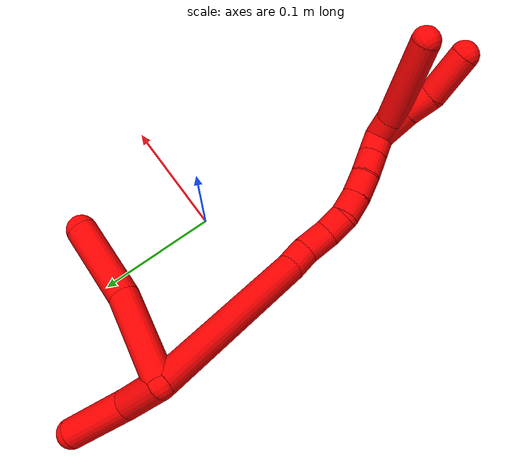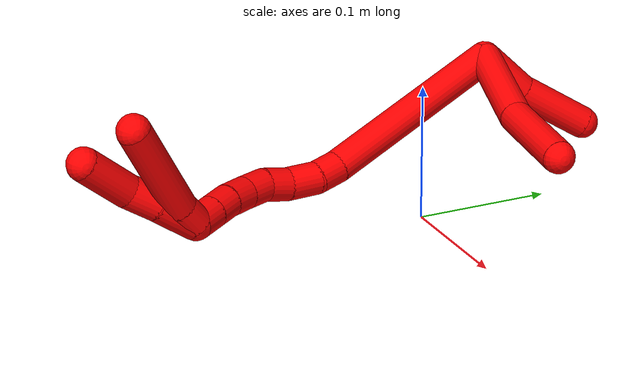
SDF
<sdf version="1.7">
 <world name="default">
  <model name="2">
   <static>0</static>
   <link name="2">
    <collision name="collision-cylinder-e_1_2_8">
     <pose>0.013719 -0.004224 0.038084 0.110471 0.343815 0.019199</pose>
     <geometry><cylinder><radius>0.0125</radius><length>0.0814</length></cylinder></geometry>
     <surface>
      <friction><ode><mu>1.16</mu><mu2>1.16</mu2><slip1>0</slip1><slip2>0</slip2></ode></friction>
      <contact><ode><kp>1e+06</kp><kd>1</kd><max_vel>0</max_vel><min_depth>0.001</min_depth></ode></contact>
     </surface>
    </collision>
    <visual name="visual-cylinder-e_1_2_8">
     <pose>0.013719 -0.004224 0.038084 0.110471 0.343815 0.019199</pose>
     <geometry><cylinder><radius>0.0125</radius><length>0.0814</length></cylinder></geometry>
     <material><ambient>1 0 0 1</ambient></material>
    </visual>
    <collision name="collision-cylinder-e_2_8_6">
     <pose>0.034398 -0.006861 0.109718 -0.047291 0.204324 -0.004849</pose>
     <geometry><cylinder><radius>0.0125</radius><length>0.0686</length></cylinder></geometry>
     <surface>
      <friction><ode><mu>1.16</mu><mu2>1.16</mu2><slip1>0</slip1><slip2>0</slip2></ode></friction>
      <contact><ode><kp>1e+06</kp><kd>1</kd><max_vel>0</max_vel><min_depth>0.001</min_depth></ode></contact>
     </surface>
    </collision>
    <visual name="visual-cylinder-e_2_8_6">
     <pose>0.034398 -0.006861 0.109718 -0.047291 0.204324 -0.004849</pose>
     <geometry><cylinder><radius>0.0125</radius><length>0.0686</length></cylinder></geometry>
     <material><ambient>1 0 0 1</ambient></material>
    </visual>
    <collision name="collision-cylinder-e_1_2_9">
     <pose>0.014941 0.0144 0.00139 -1.47458 0.801525 -0.734616</pose>
     <geometry><cylinder><radius>0.0125</radius><length>0.041594</length></cylinder></geometry>
     <surface>
      <friction><ode><mu>1.16</mu><mu2>1.16</mu2><slip1>0</slip1><slip2>0</slip2></ode></friction>
      <contact><ode><kp>1e+06</kp><kd>1</kd><max_vel>0</max_vel><min_depth>0.001</min_depth></ode></contact>
     </surface>
    </collision>
    <visual name="visual-cylinder-e_1_2_9">
     <pose>0.014941 0.0144 0.00139 -1.47458 0.801525 -0.734616</pose>
     <geometry><cylinder><radius>0.0125</radius><length>0.041594</length></cylinder></geometry>
     <material><ambient>1 0 0 1</ambient></material>
    </visual>
    <collision name="collision-cylinder-e_2_9_5">
     <pose>0.045762 0.053174 0.005337 -1.46626 0.574932 -0.520444</pose>
     <geometry><cylinder><radius>0.0125</radius><length>0.058406</length></cylinder></geometry>
     <surface>
      <friction><ode><mu>1.16</mu><mu2>1.16</mu2><slip1>0</slip1><slip2>0</slip2></ode></friction>
      <contact><ode><kp>1e+06</kp><kd>1</kd><max_vel>0</max_vel><min_depth>0.001</min_depth></ode></contact>
     </surface>
    </collision>
    <visual name="visual-cylinder-e_2_9_5">
     <pose>0.045762 0.053174 0.005337 -1.46626 0.574932 -0.520444</pose>
     <geometry><cylinder><radius>0.0125</radius><length>0.058406</length></cylinder></geometry>
     <material><ambient>1 0 0 1</ambient></material>
    </visual>
    <collision name="collision-cylinder-e_1_2_10">
     <pose>0.028753 -0.068805 0.017911 1.31614 0.384304 0.298546</pose>
     <geometry><cylinder><radius>0.0125</radius><length>0.153383</length></cylinder></geometry>
     <surface>
      <friction><ode><mu>1.16</mu><mu2>1.16</mu2><slip1>0</slip1><slip2>0</slip2></ode></friction>
      <contact><ode><kp>1e+06</kp><kd>1</kd><max_vel>0</max_vel><min_depth>0.001</min_depth></ode></contact>
     </surface>
    </collision>
    <visual name="visual-cylinder-e_1_2_10">
     <pose>0.028753 -0.068805 0.017911 1.31614 0.384304 0.298546</pose>
     <geometry><cylinder><radius>0.0125</radius><length>0.153383</length></cylinder></geometry>
     <material><ambient>1 0 0 1</ambient></material>
    </visual>
    <collision name="collision-cylinder-e_2_10_11">
     <pose>0.059514 -0.147092 0.039046 1.24304 0.197865 0.141937</pose>
     <geometry><cylinder><radius>0.0125</radius><length>0.02043</length></cylinder></geometry>
     <surface>
      <friction><ode><mu>1.16</mu><mu2>1.16</mu2><slip1>0</slip1><slip2>0</slip2></ode></friction>
      <contact><ode><kp>1e+06</kp><kd>1</kd><max_vel>0</max_vel><min_depth>0.001</min_depth></ode></contact>
     </surface>
    </collision>
    <visual name="visual-cylinder-e_2_10_11">
     <pose>0.059514 -0.147092 0.039046 1.24304 0.197865 0.141937</pose>
     <geometry><cylinder><radius>0.0125</radius><length>0.02043</length></cylinder></geometry>
     <material><ambient>1 0 0 1</ambient></material>
    </visual>
    <collision name="collision-cylinder-e_3_11_12">
     <pose>0.061589 -0.168805 0.044183 1.41563 0.005468 0.004679</pose>
     <geometry><cylinder><radius>0.0125</radius><length>0.024758</length></cylinder></geometry>
     <surface>
      <friction><ode><mu>1.16</mu><mu2>1.16</mu2><slip1>0</slip1><slip2>0</slip2></ode></friction>
      <contact><ode><kp>1e+06</kp><kd>1</kd><max_vel>0</max_vel><min_depth>0.001</min_depth></ode></contact>
     </surface>
    </collision>
    <visual name="visual-cylinder-e_3_11_12">
     <pose>0.061589 -0.168805 0.044183 1.41563 0.005468 0.004679</pose>
     <geometry><cylinder><radius>0.0125</radius><length>0.024758</length></cylinder></geometry>
     <material><ambient>1 0 0 1</ambient></material>
    </visual>
    <collision name="collision-cylinder-e_4_12_13">
     <pose>0.05972 -0.190576 0.048423 1.33165 -0.1948 -0.153197</pose>
     <geometry><cylinder><radius>0.0125</radius><length>0.020019</length></cylinder></geometry>
     <surface>
      <friction><ode><mu>1.16</mu><mu2>1.16</mu2><slip1>0</slip1><slip2>0</slip2></ode></friction>
      <contact><ode><kp>1e+06</kp><kd>1</kd><max_vel>0</max_vel><min_depth>0.001</min_depth></ode></contact>
     </surface>
    </collision>
    <visual name="visual-cylinder-e_4_12_13">
     <pose>0.05972 -0.190576 0.048423 1.33165 -0.1948 -0.153197</pose>
     <geometry><cylinder><radius>0.0125</radius><length>0.020019</length></cylinder></geometry>
     <material><ambient>1 0 0 1</ambient></material>
    </visual>
    <collision name="collision-cylinder-e_5_13_14">
     <pose>0.058091 -0.209134 0.05565 1.07296 0.030131 0.017919</pose>
     <geometry><cylinder><radius>0.0125</radius><length>0.020535</length></cylinder></geometry>
     <surface>
      <friction><ode><mu>1.16</mu><mu2>1.16</mu2><slip1>0</slip1><slip2>0</slip2></ode></friction>
      <contact><ode><kp>1e+06</kp><kd>1</kd><max_vel>0</max_vel><min_depth>0.001</min_depth></ode></contact>
     </surface>
    </collision>
    <visual name="visual-cylinder-e_5_13_14">
     <pose>0.058091 -0.209134 0.05565 1.07296 0.030131 0.017919</pose>
     <geometry><cylinder><radius>0.0125</radius><length>0.020535</length></cylinder></geometry>
     <material><ambient>1 0 0 1</ambient></material>
    </visual>
    <collision name="collision-cylinder-e_6_14_15">
     <pose>0.058377 -0.226588 0.066642 0.945466 -0.002281 -0.001167</pose>
     <geometry><cylinder><radius>0.0125</radius><length>0.020812</length></cylinder></geometry>
     <surface>
      <friction><ode><mu>1.16</mu><mu2>1.16</mu2><slip1>0</slip1><slip2>0</slip2></ode></friction>
      <contact><ode><kp>1e+06</kp><kd>1</kd><max_vel>0</max_vel><min_depth>0.001</min_depth></ode></contact>
     </surface>
    </collision>
    <visual name="visual-cylinder-e_6_14_15">
     <pose>0.058377 -0.226588 0.066642 0.945466 -0.002281 -0.001167</pose>
     <geometry><cylinder><radius>0.0125</radius><length>0.020812</length></cylinder></geometry>
     <material><ambient>1 0 0 1</ambient></material>
    </visual>
    <collision name="collision-cylinder-e_7_15_16">
     <pose>0.059498 -0.24276 0.078995 0.890331 0.114493 0.054671</pose>
     <geometry><cylinder><radius>0.0125</radius><length>0.020036</length></cylinder></geometry>
     <surface>
      <friction><ode><mu>1.16</mu><mu2>1.16</mu2><slip1>0</slip1><slip2>0</slip2></ode></friction>
      <contact><ode><kp>1e+06</kp><kd>1</kd><max_vel>0</max_vel><min_depth>0.001</min_depth></ode></contact>
     </surface>
    </collision>
    <visual name="visual-cylinder-e_7_15_16">
     <pose>0.059498 -0.24276 0.078995 0.890331 0.114493 0.054671</pose>
     <geometry><cylinder><radius>0.0125</radius><length>0.020036</length></cylinder></geometry>
     <material><ambient>1 0 0 1</ambient></material>
    </visual>
    <collision name="collision-cylinder-e_8_16_1">
     <pose>0.061755 -0.258248 0.091496 0.893098 0.111325 0.053346</pose>
     <geometry><cylinder><radius>0.0125</radius><length>0.020026</length></cylinder></geometry>
     <surface>
      <friction><ode><mu>1.16</mu><mu2>1.16</mu2><slip1>0</slip1><slip2>0</slip2></ode></friction>
      <contact><ode><kp>1e+06</kp><kd>1</kd><max_vel>0</max_vel><min_depth>0.001</min_depth></ode></contact>
     </surface>
    </collision>
    <visual name="visual-cylinder-e_8_16_1">
     <pose>0.061755 -0.258248 0.091496 0.893098 0.111325 0.053346</pose>
     <geometry><cylinder><radius>0.0125</radius><length>0.020026</length></cylinder></geometry>
     <material><ambient>1 0 0 1</ambient></material>
    </visual>
    <collision name="collision-cylinder-e_1_1_17">
     <pose>0.053266 -0.279595 0.099099 1.47081 -0.612531 -0.557273</pose>
     <geometry><cylinder><radius>0.0125</radius><length>0.033398</length></cylinder></geometry>
     <surface>
      <friction><ode><mu>1.16</mu><mu2>1.16</mu2><slip1>0</slip1><slip2>0</slip2></ode></friction>
      <contact><ode><kp>1e+06</kp><kd>1</kd><max_vel>0</max_vel><min_depth>0.001</min_depth></ode></contact>
     </surface>
    </collision>
    <visual name="visual-cylinder-e_1_1_17">
     <pose>0.053266 -0.279595 0.099099 1.47081 -0.612531 -0.557273</pose>
     <geometry><cylinder><radius>0.0125</radius><length>0.033398</length></cylinder></geometry>
     <material><ambient>1 0 0 1</ambient></material>
    </visual>
    <collision name="collision-cylinder-e_2_17_18">
     <pose>0.037196 -0.303515 0.100128 1.6032 -0.559466 -0.576902</pose>
     <geometry><cylinder><radius>0.0125</radius><length>0.024378</length></cylinder></geometry>
     <surface>
      <friction><ode><mu>1.16</mu><mu2>1.16</mu2><slip1>0</slip1><slip2>0</slip2></ode></friction>
      <contact><ode><kp>1e+06</kp><kd>1</kd><max_vel>0</max_vel><min_depth>0.001</min_depth></ode></contact>
     </surface>
    </collision>
    <visual name="visual-cylinder-e_2_17_18">
     <pose>0.037196 -0.303515 0.100128 1.6032 -0.559466 -0.576902</pose>
     <geometry><cylinder><radius>0.0125</radius><length>0.024378</length></cylinder></geometry>
     <material><ambient>1 0 0 1</ambient></material>
    </visual>
    <collision name="collision-cylinder-e_3_18_4">
     <pose>0.017352 -0.329461 0.104573 1.27387 -0.686079 -0.516643</pose>
     <geometry><cylinder><radius>0.0125</radius><length>0.042224</length></cylinder></geometry>
     <surface>
      <friction><ode><mu>1.16</mu><mu2>1.16</mu2><slip1>0</slip1><slip2>0</slip2></ode></friction>
      <contact><ode><kp>1e+06</kp><kd>1</kd><max_vel>0</max_vel><min_depth>0.001</min_depth></ode></contact>
     </surface>
    </collision>
    <visual name="visual-cylinder-e_3_18_4">
     <pose>0.017352 -0.329461 0.104573 1.27387 -0.686079 -0.516643</pose>
     <geometry><cylinder><radius>0.0125</radius><length>0.042224</length></cylinder></geometry>
     <material><ambient>1 0 0 1</ambient></material>
    </visual>
    <collision name="collision-cylinder-e_1_1_19">
     <pose>0.055208 -0.271947 0.100247 1.17118 -0.870437 -0.598199</pose>
     <geometry><cylinder><radius>0.0125</radius><length>0.020034</length></cylinder></geometry>
     <surface>
      <friction><ode><mu>1.16</mu><mu2>1.16</mu2><slip1>0</slip1><slip2>0</slip2></ode></friction>
      <contact><ode><kp>1e+06</kp><kd>1</kd><max_vel>0</max_vel><min_depth>0.001</min_depth></ode></contact>
     </surface>
    </collision>
    <visual name="visual-cylinder-e_1_1_19">
     <pose>0.055208 -0.271947 0.100247 1.17118 -0.870437 -0.598199</pose>
     <geometry><cylinder><radius>0.0125</radius><length>0.020034</length></cylinder></geometry>
     <material><ambient>1 0 0 1</ambient></material>
    </visual>
    <collision name="collision-cylinder-e_2_19_3">
     <pose>0.013921 -0.29534 0.115544 0.938351 -0.999226 -0.539859</pose>
     <geometry><cylinder><radius>0.0125</radius><length>0.079966</length></cylinder></geometry>
     <surface>
      <friction><ode><mu>1.16</mu><mu2>1.16</mu2><slip1>0</slip1><slip2>0</slip2></ode></friction>
      <contact><ode><kp>1e+06</kp><kd>1</kd><max_vel>0</max_vel><min_depth>0.001</min_depth></ode></contact>
     </surface>
    </collision>
    <visual name="visual-cylinder-e_2_19_3">
     <pose>0.013921 -0.29534 0.115544 0.938351 -0.999226 -0.539859</pose>
     <geometry><cylinder><radius>0.0125</radius><length>0.079966</length></cylinder></geometry>
     <material><ambient>1 0 0 1</ambient></material>
    </visual>
    <collision name="collision-sphere-3">
     <pose>-0.019707 -0.312786 0.128329 0 -0 0</pose>
     <geometry><sphere><radius>0.0125</radius></sphere></geometry>
     <surface>
      <friction><ode><mu>1.16</mu><mu2>1.16</mu2><slip1>0</slip1><slip2>0</slip2></ode></friction>
      <contact><ode><kp>1e+06</kp><kd>1</kd><max_vel>0</max_vel><min_depth>0.001</min_depth></ode></contact>
     </surface>
    </collision>
    <visual name="visual-sphere-3">
     <pose>-0.019707 -0.312786 0.128329 0 -0 0</pose>
     <geometry><sphere><radius>0.0125</radius></sphere></geometry>
     <material><ambient>1 0 0 1</ambient></material>
    </visual>
    <collision name="collision-sphere-19">
     <pose>0.047549 -0.277895 0.102759 0 -0 0</pose>
     <geometry><sphere><radius>0.0125</radius></sphere></geometry>
     <surface>
      <friction><ode><mu>1.16</mu><mu2>1.16</mu2><slip1>0</slip1><slip2>0</slip2></ode></friction>
      <contact><ode><kp>1e+06</kp><kd>1</kd><max_vel>0</max_vel><min_depth>0.001</min_depth></ode></contact>
     </surface>
    </collision>
    <visual name="visual-sphere-19">
     <pose>0.047549 -0.277895 0.102759 0 -0 0</pose>
     <geometry><sphere><radius>0.0125</radius></sphere></geometry>
     <material><ambient>1 0 0 1</ambient></material>
    </visual>
    <collision name="collision-sphere-10">
     <pose>0.057506 -0.13761 0.035822 0 -0 0</pose>
     <geometry><sphere><radius>0.0125</radius></sphere></geometry>
     <surface>
      <friction><ode><mu>1.16</mu><mu2>1.16</mu2><slip1>0</slip1><slip2>0</slip2></ode></friction>
      <contact><ode><kp>1e+06</kp><kd>1</kd><max_vel>0</max_vel><min_depth>0.001</min_depth></ode></contact>
     </surface>
    </collision>
    <visual name="visual-sphere-10">
     <pose>0.057506 -0.13761 0.035822 0 -0 0</pose>
     <geometry><sphere><radius>0.0125</radius></sphere></geometry>
     <material><ambient>1 0 0 1</ambient></material>
    </visual>
    <collision name="collision-sphere-5">
     <pose>0.061642 0.077548 0.007894 0 -0 0</pose>
     <geometry><sphere><radius>0.0125</radius></sphere></geometry>
     <surface>
      <friction><ode><mu>1.16</mu><mu2>1.16</mu2><slip1>0</slip1><slip2>0</slip2></ode></friction>
      <contact><ode><kp>1e+06</kp><kd>1</kd><max_vel>0</max_vel><min_depth>0.001</min_depth></ode></contact>
     </surface>
    </collision>
    <visual name="visual-sphere-5">
     <pose>0.061642 0.077548 0.007894 0 -0 0</pose>
     <geometry><sphere><radius>0.0125</radius></sphere></geometry>
     <material><ambient>1 0 0 1</ambient></material>
    </visual>
    <collision name="collision-sphere-6">
     <pose>0.041358 -0.005273 0.143267 0 -0 0</pose>
     <geometry><sphere><radius>0.0125</radius></sphere></geometry>
     <surface>
      <friction><ode><mu>1.16</mu><mu2>1.16</mu2><slip1>0</slip1><slip2>0</slip2></ode></friction>
      <contact><ode><kp>1e+06</kp><kd>1</kd><max_vel>0</max_vel><min_depth>0.001</min_depth></ode></contact>
     </surface>
    </collision>
    <visual name="visual-sphere-6">
     <pose>0.041358 -0.005273 0.143267 0 -0 0</pose>
     <geometry><sphere><radius>0.0125</radius></sphere></geometry>
     <material><ambient>1 0 0 1</ambient></material>
    </visual>
    <collision name="collision-sphere-9">
     <pose>0.029882 0.028799 0.00278 0 -0 0</pose>
     <geometry><sphere><radius>0.0125</radius></sphere></geometry>
     <surface>
      <friction><ode><mu>1.16</mu><mu2>1.16</mu2><slip1>0</slip1><slip2>0</slip2></ode></friction>
      <contact><ode><kp>1e+06</kp><kd>1</kd><max_vel>0</max_vel><min_depth>0.001</min_depth></ode></contact>
     </surface>
    </collision>
    <visual name="visual-sphere-9">
     <pose>0.029882 0.028799 0.00278 0 -0 0</pose>
     <geometry><sphere><radius>0.0125</radius></sphere></geometry>
     <material><ambient>1 0 0 1</ambient></material>
    </visual>
    <collision name="collision-sphere-2">
     <geometry><sphere><radius>0.0125</radius></sphere></geometry>
     <surface>
      <friction><ode><mu>1.16</mu><mu2>1.16</mu2><slip1>0</slip1><slip2>0</slip2></ode></friction>
      <contact><ode><kp>1e+06</kp><kd>1</kd><max_vel>0</max_vel><min_depth>0.001</min_depth></ode></contact>
     </surface>
    </collision>
    <visual name="visual-sphere-2">
     <geometry><sphere><radius>0.0125</radius></sphere></geometry>
     <material><ambient>1 0 0 1</ambient></material>
    </visual>
    <collision name="collision-sphere-8">
     <pose>0.027438 -0.008449 0.076169 0 -0 0</pose>
     <geometry><sphere><radius>0.0125</radius></sphere></geometry>
     <surface>
      <friction><ode><mu>1.16</mu><mu2>1.16</mu2><slip1>0</slip1><slip2>0</slip2></ode></friction>
      <contact><ode><kp>1e+06</kp><kd>1</kd><max_vel>0</max_vel><min_depth>0.001</min_depth></ode></contact>
     </surface>
    </collision>
    <visual name="visual-sphere-8">
     <pose>0.027438 -0.008449 0.076169 0 -0 0</pose>
     <geometry><sphere><radius>0.0125</radius></sphere></geometry>
     <material><ambient>1 0 0 1</ambient></material>
    </visual>
    <collision name="collision-sphere-11">
     <pose>0.061522 -0.156575 0.04227 0 -0 0</pose>
     <geometry><sphere><radius>0.0125</radius></sphere></geometry>
     <surface>
      <friction><ode><mu>1.16</mu><mu2>1.16</mu2><slip1>0</slip1><slip2>0</slip2></ode></friction>
      <contact><ode><kp>1e+06</kp><kd>1</kd><max_vel>0</max_vel><min_depth>0.001</min_depth></ode></contact>
     </surface>
    </collision>
    <visual name="visual-sphere-11">
     <pose>0.061522 -0.156575 0.04227 0 -0 0</pose>
     <geometry><sphere><radius>0.0125</radius></sphere></geometry>
     <material><ambient>1 0 0 1</ambient></material>
    </visual>
    <collision name="collision-sphere-12">
     <pose>0.061657 -0.181035 0.046096 0 -0 0</pose>
     <geometry><sphere><radius>0.0125</radius></sphere></geometry>
     <surface>
      <friction><ode><mu>1.16</mu><mu2>1.16</mu2><slip1>0</slip1><slip2>0</slip2></ode></friction>
      <contact><ode><kp>1e+06</kp><kd>1</kd><max_vel>0</max_vel><min_depth>0.001</min_depth></ode></contact>
     </surface>
    </collision>
    <visual name="visual-sphere-12">
     <pose>0.061657 -0.181035 0.046096 0 -0 0</pose>
     <geometry><sphere><radius>0.0125</radius></sphere></geometry>
     <material><ambient>1 0 0 1</ambient></material>
    </visual>
    <collision name="collision-sphere-13">
     <pose>0.057782 -0.200116 0.050749 0 -0 0</pose>
     <geometry><sphere><radius>0.0125</radius></sphere></geometry>
     <surface>
      <friction><ode><mu>1.16</mu><mu2>1.16</mu2><slip1>0</slip1><slip2>0</slip2></ode></friction>
      <contact><ode><kp>1e+06</kp><kd>1</kd><max_vel>0</max_vel><min_depth>0.001</min_depth></ode></contact>
     </surface>
    </collision>
    <visual name="visual-sphere-13">
     <pose>0.057782 -0.200116 0.050749 0 -0 0</pose>
     <geometry><sphere><radius>0.0125</radius></sphere></geometry>
     <material><ambient>1 0 0 1</ambient></material>
    </visual>
    <collision name="collision-sphere-14">
     <pose>0.058401 -0.218151 0.060551 0 -0 0</pose>
     <geometry><sphere><radius>0.0125</radius></sphere></geometry>
     <surface>
      <friction><ode><mu>1.16</mu><mu2>1.16</mu2><slip1>0</slip1><slip2>0</slip2></ode></friction>
      <contact><ode><kp>1e+06</kp><kd>1</kd><max_vel>0</max_vel><min_depth>0.001</min_depth></ode></contact>
     </surface>
    </collision>
    <visual name="visual-sphere-14">
     <pose>0.058401 -0.218151 0.060551 0 -0 0</pose>
     <geometry><sphere><radius>0.0125</radius></sphere></geometry>
     <material><ambient>1 0 0 1</ambient></material>
    </visual>
    <collision name="collision-sphere-15">
     <pose>0.058353 -0.235024 0.072733 0 -0 0</pose>
     <geometry><sphere><radius>0.0125</radius></sphere></geometry>
     <surface>
      <friction><ode><mu>1.16</mu><mu2>1.16</mu2><slip1>0</slip1><slip2>0</slip2></ode></friction>
      <contact><ode><kp>1e+06</kp><kd>1</kd><max_vel>0</max_vel><min_depth>0.001</min_depth></ode></contact>
     </surface>
    </collision>
    <visual name="visual-sphere-15">
     <pose>0.058353 -0.235024 0.072733 0 -0 0</pose>
     <geometry><sphere><radius>0.0125</radius></sphere></geometry>
     <material><ambient>1 0 0 1</ambient></material>
    </visual>
    <collision name="collision-sphere-16">
     <pose>0.060642 -0.250496 0.085256 0 -0 0</pose>
     <geometry><sphere><radius>0.0125</radius></sphere></geometry>
     <surface>
      <friction><ode><mu>1.16</mu><mu2>1.16</mu2><slip1>0</slip1><slip2>0</slip2></ode></friction>
      <contact><ode><kp>1e+06</kp><kd>1</kd><max_vel>0</max_vel><min_depth>0.001</min_depth></ode></contact>
     </surface>
    </collision>
    <visual name="visual-sphere-16">
     <pose>0.060642 -0.250496 0.085256 0 -0 0</pose>
     <geometry><sphere><radius>0.0125</radius></sphere></geometry>
     <material><ambient>1 0 0 1</ambient></material>
    </visual>
    <collision name="collision-sphere-1">
     <pose>0.062867 -0.266 0.097735 0 -0 0</pose>
     <geometry><sphere><radius>0.0125</radius></sphere></geometry>
     <surface>
      <friction><ode><mu>1.16</mu><mu2>1.16</mu2><slip1>0</slip1><slip2>0</slip2></ode></friction>
      <contact><ode><kp>1e+06</kp><kd>1</kd><max_vel>0</max_vel><min_depth>0.001</min_depth></ode></contact>
     </surface>
    </collision>
    <visual name="visual-sphere-1">
     <pose>0.062867 -0.266 0.097735 0 -0 0</pose>
     <geometry><sphere><radius>0.0125</radius></sphere></geometry>
     <material><ambient>1 0 0 1</ambient></material>
    </visual>
    <collision name="collision-sphere-18">
     <pose>0.030727 -0.31384 0.099794 0 -0 0</pose>
     <geometry><sphere><radius>0.0125</radius></sphere></geometry>
     <surface>
      <friction><ode><mu>1.16</mu><mu2>1.16</mu2><slip1>0</slip1><slip2>0</slip2></ode></friction>
      <contact><ode><kp>1e+06</kp><kd>1</kd><max_vel>0</max_vel><min_depth>0.001</min_depth></ode></contact>
     </surface>
    </collision>
    <visual name="visual-sphere-18">
     <pose>0.030727 -0.31384 0.099794 0 -0 0</pose>
     <geometry><sphere><radius>0.0125</radius></sphere></geometry>
     <material><ambient>1 0 0 1</ambient></material>
    </visual>
    <collision name="collision-sphere-17">
     <pose>0.043665 -0.29319 0.100463 0 -0 0</pose>
     <geometry><sphere><radius>0.0125</radius></sphere></geometry>
     <surface>
      <friction><ode><mu>1.16</mu><mu2>1.16</mu2><slip1>0</slip1><slip2>0</slip2></ode></friction>
      <contact><ode><kp>1e+06</kp><kd>1</kd><max_vel>0</max_vel><min_depth>0.001</min_depth></ode></contact>
     </surface>
    </collision>
    <visual name="visual-sphere-17">
     <pose>0.043665 -0.29319 0.100463 0 -0 0</pose>
     <geometry><sphere><radius>0.0125</radius></sphere></geometry>
     <material><ambient>1 0 0 1</ambient></material>
    </visual>
    <collision name="collision-sphere-4">
     <pose>0.003978 -0.345081 0.109352 0 -0 0</pose>
     <geometry><sphere><radius>0.0125</radius></sphere></geometry>
     <surface>
      <friction><ode><mu>1.16</mu><mu2>1.16</mu2><slip1>0</slip1><slip2>0</slip2></ode></friction>
      <contact><ode><kp>1e+06</kp><kd>1</kd><max_vel>0</max_vel><min_depth>0.001</min_depth></ode></contact>
     </surface>
    </collision>
    <visual name="visual-sphere-4">
     <pose>0.003978 -0.345081 0.109352 0 -0 0</pose>
     <geometry><sphere><radius>0.0125</radius></sphere></geometry>
     <material><ambient>1 0 0 1</ambient></material>
    </visual>
    <inertial>
     <pose>0.034122 -0.129897 0.058618 0 -0 0</pose>
     <mass>0.75</mass>
     <inertia>
      <ixx>0.000463</ixx>
      <ixy>0</ixy>
      <ixz>0</ixz>
      <iyy>0.000276</iyy>
      <iyz>0</iyz>
      <izz>0.000217</izz>
     </inertia>
    </inertial>
   </link>
   <pose>-0.108697 0.108809 0.07144 0.176673 1.46808 0.090035</pose>
  </model>
 </world>
</sdf>
